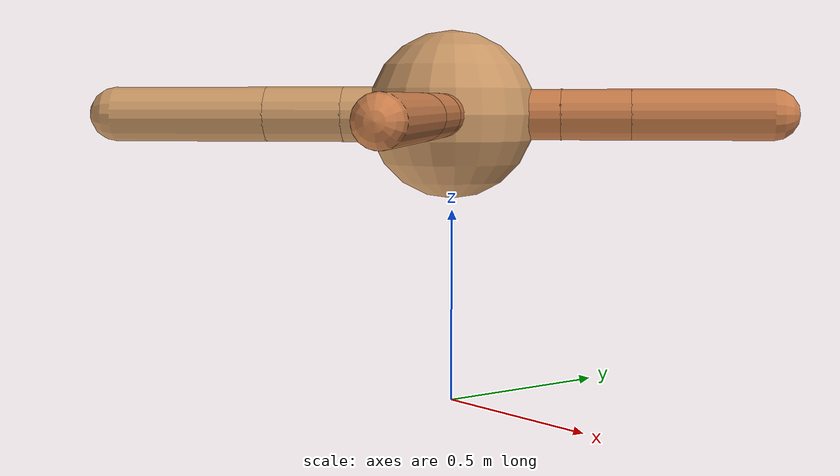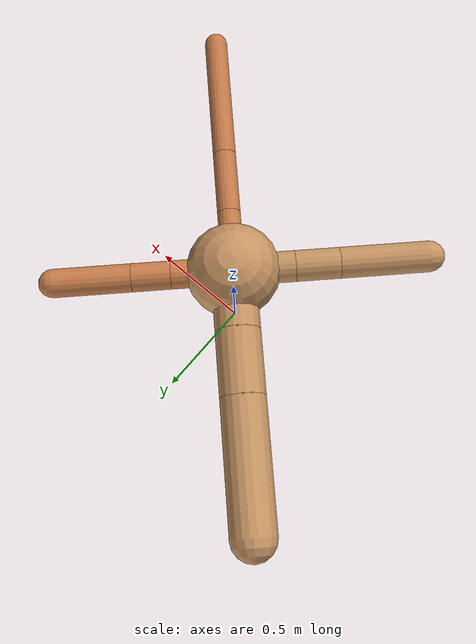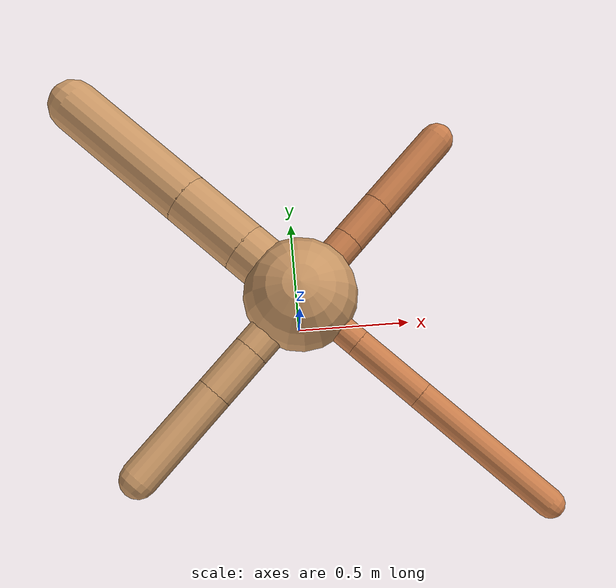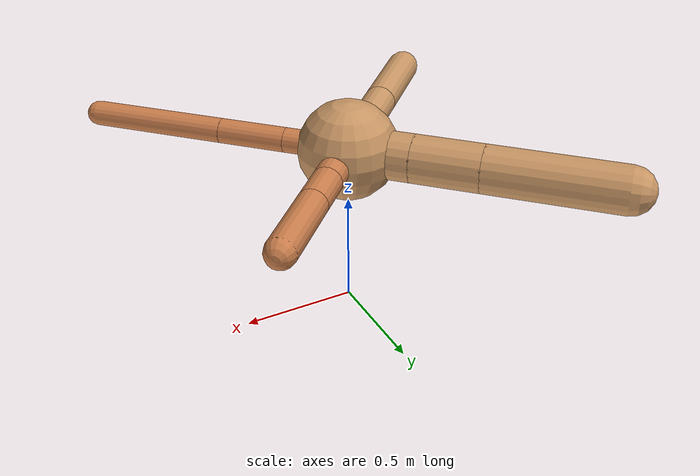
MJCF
<?xml version="1.0" ?>
<mujoco model="ant">

	<compiler angle="degree" coordinate="local" inertiafromgeom="true"/>

	<option integrator="RK4" timestep="0.01"/>

	<custom>

		<numeric data="0.0 0.0 0.55 1.0 0.0 0.0 0.0 0.0 1.0 0.0 -1.0 0.0 -1.0 0.0 1.0" name="init_qpos"/>

	</custom>

	<default>

		<joint armature="1" damping="1" limited="true"/>

		<geom conaffinity="0" condim="3" density="5.0" friction="1.5 0.1 0.1" margin="0.01" rgba="0.8 0.6 0.4 1"/>

	</default>

	<worldbody>

		<body name="torso" pos="0 0 0.75">

			<geom name="torso_geom" pos="0 0 0" size="0.21756374622707975" type="sphere"/>

			<!--joint armature="0" damping="0" limited="false" margin="0.01" name="root" pos="0 0 0" type="free"/-->

			<body name="front_left_leg" pos="0 0 0">

				<geom fromto="0 0 0 0.2 0.2 0" name="aux_1_geom" size="0.06606184046133559" type="capsule" rgba=".8 .5 .3 1"/>

				<body name="aux_1" pos="0.2 0.2 0">

					<joint axis="0 0 1" name="hip_1" pos="0.0 0.0 0.0" range="-40 40" type="hinge"/>

					<geom fromto="0 0 0 0.12631134254403142 0.12631134254403142 0" name="left_leg_geom" size="0.06606184046133559" type="capsule" rgba=".8 .5 .3 1"/>

					<body pos="0.12631134254403142 0.12631134254403142 0" name="front_left_foot">

						<joint axis="-1 1 0" name="ankle_1" pos="0.0 0.0 0.0" range="30 100" type="hinge"/>

						<geom fromto="0 0 0 0.25262268508806285 0.25262268508806285 0" name="left_ankle_geom" size="0.06606184046133559" type="capsule" rgba=".8 .5 .3 1"/>

					</body>

				</body>

			</body>

			<body name="front_right_leg" pos="0 0 0">

				<geom fromto="0 0 0 -0.2 0.2 0" name="aux_2_geom" size="0.10443848870816902" type="capsule"/>

				<body name="aux_2" pos="-0.2 0.2 0">

					<joint axis="0 0 1" name="hip_2" pos="0.0 0.0 0.0" range="-40 40" type="hinge"/>

					<geom fromto="0 0 0 -0.2107851687815937 0.2107851687815937 0" name="right_leg_geom" size="0.10443848870816902" type="capsule"/>

					<body pos="-0.2107851687815937 0.2107851687815937 0" name="front_right_foot">

						<joint axis="1 1 0" name="ankle_2" pos="0.0 0.0 0.0" range="-100 -30" type="hinge"/>

						<geom fromto="0 0 0 -0.4215703375631874 0.4215703375631874 0" name="right_ankle_geom" size="0.10443848870816902" type="capsule"/>

					</body>

				</body>

			</body>

			<body name="left_back_leg" pos="0 0 0">

				<geom fromto="0 0 0 -0.2 -0.2 0" name="aux_3_geom" size="0.07239105144204559" type="capsule"/>

				<body name="aux_3" pos="-0.2 -0.2 0">

					<joint axis="0 0 1" name="hip_3" pos="0.0 0.0 0.0" range="-40 40" type="hinge"/>

					<geom fromto="0 0 0 -0.1448165746192409 -0.1448165746192409 0" name="back_leg_geom" size="0.07239105144204559" type="capsule"/>

					<body pos="-0.1448165746192409 -0.1448165746192409 0" name="left_back_foot">

						<joint axis="-1 1 0" name="ankle_3" pos="0.0 0.0 0.0" range="-100 -30" type="hinge"/>

						<geom fromto="0 0 0 -0.2896331492384818 -0.2896331492384818 0" name="third_ankle_geom" size="0.07239105144204559" type="capsule"/>

					</body>

				</body>

			</body>

			<body name="right_back_leg" pos="0 0 0">

				<geom fromto="0 0 0 0.2 -0.2 0" name="aux_4_geom" size="0.054128539341647124" type="capsule" rgba=".8 .5 .3 1"/>

				<body name="aux_4" pos="0.2 -0.2 0">

					<joint axis="0 0 1" name="hip_4" pos="0.0 0.0 0.0" range="-40 40" type="hinge"/>

					<geom fromto="0 0 0 0.21019545128071782 -0.21019545128071782 0" name="rightback_leg_geom" size="0.054128539341647124" type="capsule" rgba=".8 .5 .3 1"/>

					<body pos="0.21019545128071782 -0.21019545128071782 0" name="right_back_foot">

						<joint axis="1 1 0" name="ankle_4" pos="0.0 0.0 0.0" range="30 100" type="hinge"/>

						<geom fromto="0 0 0 0.42039090256143563 -0.42039090256143563 0" name="fourth_ankle_geom" size="0.054128539341647124" type="capsule" rgba=".8 .5 .3 1"/>

					</body>

				</body>

			</body>

		</body>

	</worldbody>

	<actuator>

		<motor ctrllimited="true" ctrlrange="-1.0 1.0" joint="hip_4" gear="150"/>

		<motor ctrllimited="true" ctrlrange="-1.0 1.0" joint="ankle_4" gear="150"/>

		<motor ctrllimited="true" ctrlrange="-1.0 1.0" joint="hip_1" gear="150"/>

		<motor ctrllimited="true" ctrlrange="-1.0 1.0" joint="ankle_1" gear="150"/>

		<motor ctrllimited="true" ctrlrange="-1.0 1.0" joint="hip_2" gear="150"/>

		<motor ctrllimited="true" ctrlrange="-1.0 1.0" joint="ankle_2" gear="150"/>

		<motor ctrllimited="true" ctrlrange="-1.0 1.0" joint="hip_3" gear="150"/>

		<motor ctrllimited="true" ctrlrange="-1.0 1.0" joint="ankle_3" gear="150"/>

	</actuator>

</mujoco>
